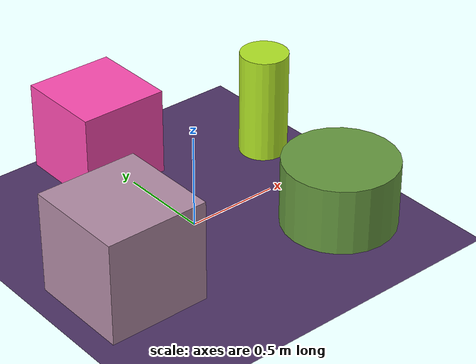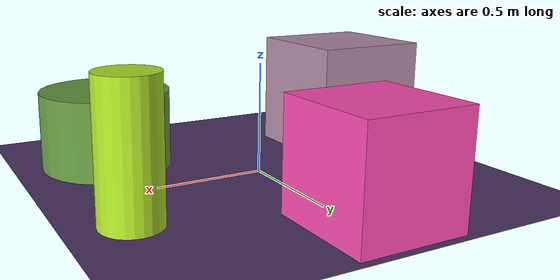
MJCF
<mujoco>
   <asset>
<texture type="skybox" builtin="gradient" rgb1="0.6 0.6 1.0" rgb2="0.6 0.2 0.6" width="256" height="256"/>
<texture name="checker_0" builtin="checker" type="2d" rgb1="0.8 1.0 0.1" rgb2="0.6 0.8 0.2" width="200" height="200"/>
<texture name="gradient_1" builtin="gradient" rgb1="0.8 0.6 0.9" rgb2="0.6 0.5 0.4" width="200" height="200"/>
<texture name="flat_2" builtin="flat" rgb1="1.0 0.3 0.7" rgb2="1.0 0.3 0.7"  width="200" height="200"/>
<texture name="gradient_3" builtin="gradient" rgb1="0.5 0.6 0.0" rgb2="0.3 0.6 0.5" width="200" height="200"/><material name="checker_0_mat" reflectance="0" texrepeat="7 7" texture="checker_0" texuniform="false" />
<material name="gradient_1_mat" reflectance="0" texture="gradient_1" texuniform="true"/>
<material name="flat_2_mat" reflectance="0" texture="flat_2" texuniform="true"/>
<material name="gradient_3_mat" reflectance="0" texture="gradient_3" texuniform="true"/>
   </asset>

   <worldbody>
      <light diffuse=".9 .9 .9" pos="0 0 3" dir="0 0 -1"/>
     <geom type="plane" size="1 1 0.1" rgba="0.3 0.2 0.4 1"/>
<geom type="cylinder" pos="0.74 0.33 0.29" size="0.13 0.29 0.29" material="checker_0_mat" />
<geom type="box" pos="-0.61 -0.24 0.27" size="0.27 0.27 0.27" material="gradient_1_mat" />
<geom type="box" pos="-0.05 0.73 0.24" size="0.24 0.24 0.24" material="flat_2_mat" />
<geom type="cylinder" pos="0.58 -0.43 0.18" size="0.3 0.18 0.18" material="gradient_3_mat" /><camera euler="60 0 180" fovy="60" name="camera_a" pos="0 -1.5 1"></camera>   </worldbody>
</mujoco>
